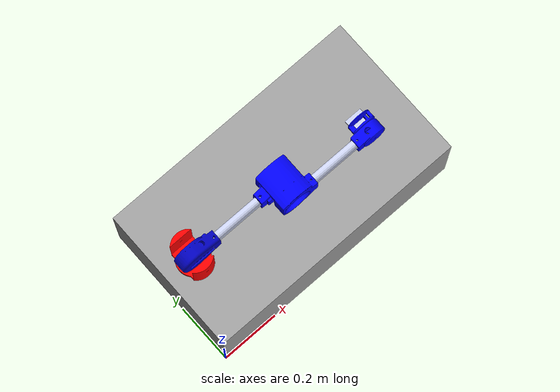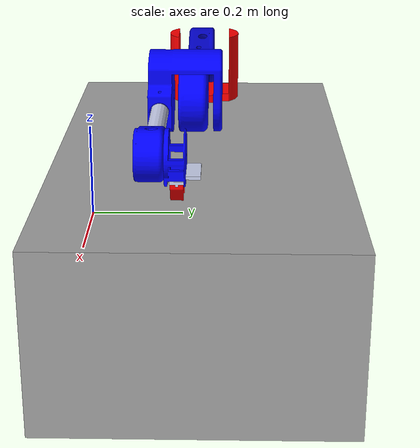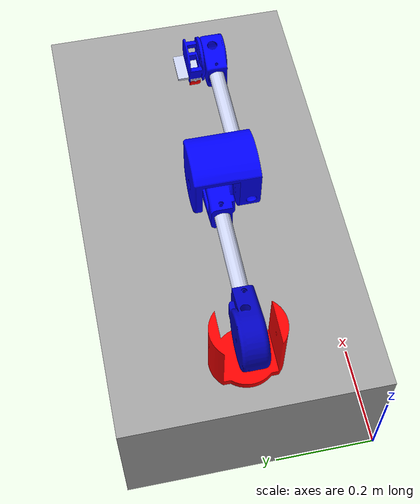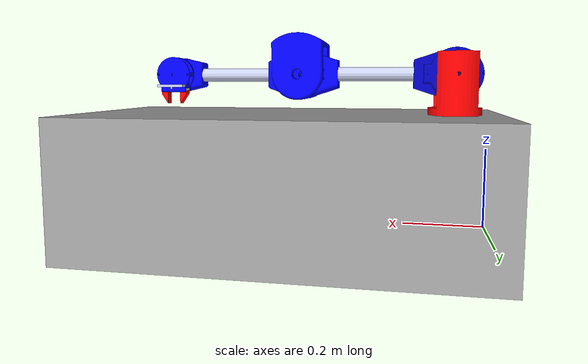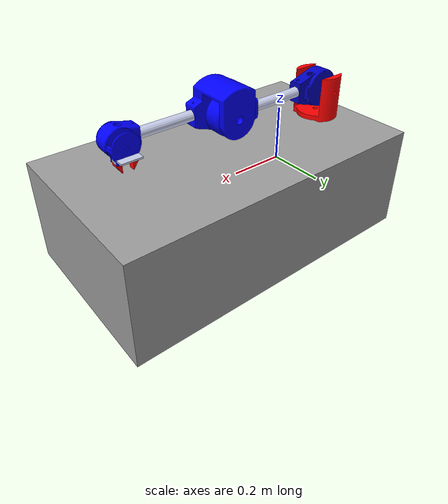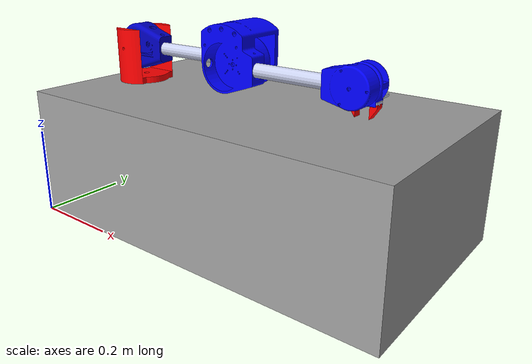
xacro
<?xml version="1.0"?>
<!-- Revolute-Revolute Manipulator -->
<!--
Copied and modified from ROS1 example -
https://github.com/ros-simulation/gazebo_ros_demos/blob/kinetic-devel/rrbot_description/urdf/rrbot.xacro
-->
<robot xmlns:xacro="http://www.ros.org/wiki/xacro" name="2dof_robot">
  <xacro:arg name="prefix" default="" />
  <xacro:arg name="use_gazebo" default="false" />

  <!-- Import RRBot macro -->
  <xacro:include filename="$(find robot_arm_three)/urdf/robot_arm_three.urdf.xacro" />

  <!-- Import RRBot ros2_control description -->
  <xacro:include filename="$(find robot_arm_three)/ros2_control/rrbot.ros2_control.xacro" />

  <!-- Used for fixing robot -->

  <xacro:rrbot_ros2_control
    name="RRBot" prefix="$(arg prefix)" use_gazebo="$(arg use_gazebo)"/>

  <xacro:if value="$(arg use_gazebo)">
    <!-- Import Gazebo Classic definitions + plugin -->
    <xacro:include filename="$(find robot_arm_three)/gazebo/rrbot.gazebo.xacro" />
    <xacro:rrbot_gazebo prefix="$(arg prefix)"/>
  </xacro:if>
</robot>

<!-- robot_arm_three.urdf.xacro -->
<robot xmlns:xacro="http://www.ros.org/wiki/xacro" name="robot_arm_three">
<xacro:arg name="use_gazebo" default="false" />

<link
    name="base_link">
    <inertial>
      <origin
        xyz="0.45153 -0.15 0.25"
        rpy="0 0 0" />
      <mass
        value="500" />
      <inertia
        ixx="3.8205"
        ixy="1.1749E-16"
        ixz="-4.326E-14"
        iyy="11.852"
        iyz="-6.4283E-15"
        izz="10.048" />
    </inertial>
    <visual>
      <origin
        xyz="0 0 0"
        rpy="0 0 0" />
      <geometry>
        <mesh
          filename="file:///home/ros2/Desktop/ros_ws/src/robot_arm_three/meshes/base_link.STL" />
      </geometry>
      <material
        name="">
        <color
          rgba="0.62745 0.62745 0.62745 1" />
      </material>
    </visual>
    <collision>
      <origin
        xyz="0 0 0"
        rpy="0 0 0" />
      <geometry>
        <mesh
          filename="file:///home/ros2/Desktop/ros_ws/src/robot_arm_three/meshes/base_link.STL" />
      </geometry>
    </collision>
  </link>
  <link
    name="Moving_base_Link">
    <inertial>
      <origin
        xyz="-7.4784E-11 2.488E-09 -0.030092"
        rpy="0 0 0" />
      <mass
        value="0.41044" />
      <inertia
        ixx="0.00049787"
        ixy="8.1471E-14"
        ixz="-5.1495E-13"
        iyy="0.00059376"
        iyz="2.0784E-12"
        izz="0.00032503" />
    </inertial>
    <visual>
      <origin
        xyz="0 0 0"
        rpy="0 0 0" />
      <geometry>
        <mesh
          filename="file:///home/ros2/Desktop/ros_ws/src/robot_arm_three/meshes/Moving_base_Link.STL" />
      </geometry>
      <material
        name="">
        <color
          rgba="1 0 0 1" />
      </material>
    </visual>
    <collision>
      <origin
        xyz="0 0 0"
        rpy="0 0 0" />
      <geometry>
        <mesh
          filename="file:///home/ros2/Desktop/ros_ws/src/robot_arm_three/meshes/Moving_base_Link.STL" />
      </geometry>
    </collision>
  </link>
  <joint
    name="base_joint"
    type="fixed">
    <origin
      xyz="0.1 -0.315 0.25"
      rpy="-1.5708 0 0" />
    <parent
      link="base_link" />
    <child
      link="Moving_base_Link" />
    <axis
      xyz="0 0 0" />
  </joint>
  <link
    name="First_axis_link">
    <inertial>
      <origin
        xyz="0.00020443 -0.016953 0.042441"
        rpy="0 0 0" />
      <mass
        value="0.2878" />
      <inertia
        ixx="0.00047468"
        ixy="2.6726E-07"
        ixz="6.9283E-07"
        iyy="0.00028851"
        iyz="2.1973E-05"
        izz="0.0007004" />
    </inertial>
    <visual>
      <origin
        xyz="0 0 0"
        rpy="0 0 0" />
      <geometry>
        <mesh
          filename="file:///home/ros2/Desktop/ros_ws/src/robot_arm_three/meshes/First_axis_link.STL" />
      </geometry>
      <material
        name="">
        <color
          rgba="0 0 0.75294 1" />
      </material>
    </visual>
    <collision>
      <origin
        xyz="0 0 0"
        rpy="0 0 0" />
      <geometry>
        <mesh
          filename="file:///home/ros2/Desktop/ros_ws/src/robot_arm_three/meshes/First_axis_link.STL" />
      </geometry>
    </collision>
  </link>
  <joint
    name="First_axis_joint"
    type="revolute">
    <origin
      xyz="0 0.05 -0.07"
      rpy="1.5708 -1.5709 0" />
    <parent
      link="Moving_base_Link" />
    <child
      link="First_axis_link" />
    <axis
      xyz="0 0 1" />
    <limit
      lower="-3.1415"
      upper="3.1415"
      effort="400"
      velocity="7" />
    <dynamics
      damping="0.05"
      friction="0.1" />
    <safety_controller
      soft_upper_limit="-0.1"
      soft_lower_limit="0.1"
      k_position="50"
      k_velocity="50" />
  </joint>
  <link
    name="First_Mil_link">
    <inertial>
      <origin
        xyz="0 6.9389E-18 0.1"
        rpy="0 0 0" />
      <mass
        value="0.14137" />
      <inertia
        ixx="0.00047919"
        ixy="6.365E-22"
        ixz="-3.3602E-20"
        iyy="0.00047919"
        iyz="4.9964E-21"
        izz="1.5904E-05" />
    </inertial>
    <visual>
      <origin
        xyz="0 0 0"
        rpy="0 0 0" />
      <geometry>
        <mesh
          filename="file:///home/ros2/Desktop/ros_ws/src/robot_arm_three/meshes/First_Mil_link.STL" />
      </geometry>
      <material
        name="">
        <color
          rgba="0.79216 0.81961 0.93333 1" />
      </material>
    </visual>
    <collision>
      <origin
        xyz="0 0 0"
        rpy="0 0 0" />
      <geometry>
        <mesh
          filename="file:///home/ros2/Desktop/ros_ws/src/robot_arm_three/meshes/First_Mil_link.STL" />
      </geometry>
    </collision>
  </link>
  <joint
    name="First_Mil_joint"
    type="fixed">
    <origin
      xyz="-0.00020649 -0.065626 0.041309"
      rpy="1.5709 0 -0.00032045" />
    <parent
      link="First_axis_link" />
    <child
      link="First_Mil_link" />
    <axis
      xyz="0 0 0" />
  </joint>
  <link
    name="Second_fixing_axis_link">
    <inertial>
      <origin
        xyz="0.00045772 -0.0011495 0.048671"
        rpy="0 0 0" />
      <mass
        value="0.2878" />
      <inertia
        ixx="0.00047467"
        ixy="3.0307E-07"
        ixz="7.1506E-08"
        iyy="0.0007004"
        iyz="-2.1995E-05"
        izz="0.00028851" />
    </inertial>
    <visual>
      <origin
        xyz="0 0 0"
        rpy="0 0 0" />
      <geometry>
        <mesh
          filename="file:///home/ros2/Desktop/ros_ws/src/robot_arm_three/meshes/Second_fixing_axis_link.STL" />
      </geometry>
      <material
        name="">
        <color
          rgba="0.0 0.0 1.0 1" />
      </material>
    </visual>
    <collision>
      <origin
        xyz="0 0 0"
        rpy="0 0 0" />
      <geometry>
        <mesh
          filename="file:///home/ros2/Desktop/ros_ws/src/robot_arm_three/meshes/Second_fixing_axis_link.STL" />
      </geometry>
    </collision>
  </link>
  <joint
    name="First_mil_second_fixing_axis_joint"
    type="fixed">
    <origin
      xyz="0 0 0.2"
      rpy="0 0 0" />
    <parent
      link="First_Mil_link" />
    <child
      link="Second_fixing_axis_link" />
    <axis
      xyz="0 0 0" />
  </joint>
  <link
    name="Second_axis_link">
    <inertial>
      <origin
        xyz="0.0058045 -0.034292 0.02648"
        rpy="0 0 0" />
      <mass
        value="0.63376" />
      <inertia
        ixx="0.0012314"
        ixy="-0.00012396"
        ixz="1.0726E-05"
        iyy="0.0010088"
        iyz="-0.0001858"
        izz="0.0017832" />
    </inertial>
    <visual>
      <origin
        xyz="0 0 0"
        rpy="0 0 0" />
      <geometry>
        <mesh
          filename="file:///home/ros2/Desktop/ros_ws/src/robot_arm_three/meshes/Second_axis_link.STL" />
      </geometry>
      <material
        name="">
        <color
          rgba="0.0 0.0 1.0 1" />
      </material>
    </visual>
    <collision>
      <origin
        xyz="0 0 0"
        rpy="0 0 0" />
      <geometry>
        <mesh
          filename="file:///home/ros2/Desktop/ros_ws/src/robot_arm_three/meshes/Second_axis_link.STL" />
      </geometry>
    </collision>
  </link>
  <joint
    name="Second_axis_joint"
    type="revolute">
    <origin
      xyz="0.0004575 -0.043784 0.065618"
      rpy="-1.5708 -1.5709 0" />
    <parent
      link="Second_fixing_axis_link" />
    <child
      link="Second_axis_link" />
    <axis
      xyz="0 0 1" />
    <limit
      lower="-3.1415"
      upper="3.1415"
      effort="400"
      velocity="7" />
    <dynamics
      damping="0.05"
      friction="0.1" />
    <safety_controller
      soft_upper_limit="-0.1"
      soft_lower_limit="0.1"
      k_position="50"
      k_velocity="50" />
  </joint>
  <link
    name="Second_mil_link">
    <inertial>
      <origin
        xyz="-0.0083972 0.0054255 0.11033"
        rpy="0 0 0" />
      <mass
        value="0.14137" />
      <inertia
        ixx="0.00047919"
        ixy="1.2794E-21"
        ixz="7.0399E-20"
        iyy="0.00047919"
        iyz="-2.9758E-20"
        izz="1.5904E-05" />
    </inertial>
    <visual>
      <origin
        xyz="0 0 0"
        rpy="0 0 0" />
      <geometry>
        <mesh
          filename="file:///home/ros2/Desktop/ros_ws/src/robot_arm_three/meshes/Second_mil_link.STL" />
      </geometry>
      <material
        name="">
        <color
          rgba="0.79216 0.81961 0.93333 1" />
      </material>
    </visual>
    <collision>
      <origin
        xyz="0 0 0"
        rpy="0 0 0" />
      <geometry>
        <mesh
          filename="file:///home/ros2/Desktop/ros_ws/src/robot_arm_three/meshes/Second_mil_link.STL" />
      </geometry>
    </collision>
  </link>
  <joint
    name="Second_mil_joint"
    type="fixed">
    <origin
      xyz="0.049694 0.0055217 -0.0066038"
      rpy="1.5708 -1.5707 1.5708" />
    <parent
      link="Second_axis_link" />
    <child
      link="Second_mil_link" />
    <axis
      xyz="0 0 0" />
  </joint>
  <link
    name="Third_fixing_axis_link">
    <inertial>
      <origin
        xyz="-0.00047757 6.3774E-05 0.02611"
        rpy="0 0 0" />
      <mass
        value="0.13374" />
      <inertia
        ixx="0.00017544"
        ixy="4.9987E-10"
        ixz="-7.574E-06"
        iyy="0.00012399"
        iyz="4.6365E-09"
        izz="8.8845E-05" />
    </inertial>
    <visual>
      <origin
        xyz="0 0 0"
        rpy="0 0 0" />
      <geometry>
        <mesh
          filename="file:///home/ros2/Desktop/ros_ws/src/robot_arm_three/meshes/Third_fixing_axis_link.STL" />
      </geometry>
      <material
        name="">
        <color
          rgba="0.0 0.0 1.0 1" />
      </material>
    </visual>
    <collision>
      <origin
        xyz="0 0 0"
        rpy="0 0 0" />
      <geometry>
        <mesh
          filename="file:///home/ros2/Desktop/ros_ws/src/robot_arm_three/meshes/Third_fixing_axis_link.STL" />
      </geometry>
    </collision>
  </link>
  <joint
    name="second_mil_third_fixing_axis_joint"
    type="fixed">
    <origin
      xyz="-0.0083972 0.0054255 0.21033"
      rpy="0 0 0" />
    <parent
      link="Second_mil_link" />
    <child
      link="Third_fixing_axis_link" />
    <axis
      xyz="0 0 0" />
  </joint>
  <link
    name="Third_axis_link">
    <inertial>
      <origin
        xyz="1.2302E-06 0.0046698 0.013516"
        rpy="0 0 0" />
      <mass
        value="0.053567" />
      <inertia
        ixx="2.4098E-05"
        ixy="-1.5016E-09"
        ixz="-3.5463E-08"
        iyy="2.8157E-05"
        iyz="-1.2699E-06"
        izz="4.8213E-05" />
    </inertial>
    <visual>
      <origin
        xyz="0 0 0"
        rpy="0 0 0" />
      <geometry>
        <mesh
          filename="file:///home/ros2/Desktop/ros_ws/src/robot_arm_three/meshes/Third_axis_link.STL" />
      </geometry>
      <material
        name="">
        <color
          rgba="0.0 0.0 1.0 1" />
      </material>
    </visual>
    <collision>
      <origin
        xyz="0 0 0"
        rpy="0 0 0" />
      <geometry>
        <mesh
          filename="file:///home/ros2/Desktop/ros_ws/src/robot_arm_three/meshes/Third_axis_link.STL" />
      </geometry>
    </collision>
  </link>
  <joint
    name="Third_axis_joint"
    type="revolute">
    <origin
      xyz="0.02 0.00062296 0.04"
      rpy="3.14 -1.5708 0" />
    <parent
      link="Third_fixing_axis_link" />
    <child
      link="Third_axis_link" />
    <axis
      xyz="0 0 -1" />
    <limit
      lower="-3.14"
      upper="3.14"
      effort="200"
      velocity="7" />
    <dynamics
      damping="0.05"
      friction="0.05" />
    <safety_controller
      soft_upper_limit="-0.1"
      soft_lower_limit="0.1"
      k_position="50"
      k_velocity="50" />
  </joint>
<link
    name="camera_link">
    <inertial>
      <origin
        xyz="0.00742671528155842 0 0"
        rpy="0 0 0" />
      <mass
        value="0.00669817477042468" />
      <inertia
        ixx="2.24650679615758E-06"
        ixy="-2.85635805272217E-23"
        ixz="-3.36613657076379E-22"
        iyy="1.99652632455908E-06"
        iyz="3.23338469113802E-17"
        izz="2.8272632455908E-07" />
    </inertial>
    <visual>
      <origin
        xyz="0 0 0"
        rpy="0 0 0" />
      <geometry>
        <mesh
          filename="file:///home/ros2/Desktop/ros_ws/src/robot_arm_three/meshes/camera_link.STL" />
      </geometry>
      <material
        name="">
        <color
          rgba="0.792156862745098 0.819607843137255 0.933333333333333 1" />
      </material>
    </visual>
    <collision>
      <origin
        xyz="0 0 0"
        rpy="0 0 0" />
      <geometry>
        <mesh
          filename="file:///home/ros2/Desktop/ros_ws/src/robot_arm_three/meshes/camera_link.STL" />
      </geometry>
    </collision>
  </link>
  <joint
    name="camera_joint"
    type="fixed">
    <origin
      xyz="0 0.0331562787109546 0.0434999999999439"
      rpy="1.57079632677603 0 -1.5707963267949" />
    <parent
      link="Third_axis_link" />
    <child
      link="camera_link" />
    <axis
      xyz="0 0 0" />
  </joint>

<link name="base_lift_link"/>
<joint name="base_lift_joint" type="fixed">
    <parent link="base_lift_link"/>
    <child link="base_link"/>
    <origin xyz="0 0 0" rpy="-1.57 0 0"/>
  </joint>
<!-- ///////////////////////// gazebo  parameters////////////////////////////-->

    <gazebo reference="camera_link">
        <sensor name="camera" type="camera">
         <pose>0 0 0 0 0 -3.14</pose> <!-- roll pitch yaw -->
            <always_on>true</always_on>
            <update_rate>60</update_rate>        <!-- FPS -->
            <visualize>true</visualize>
            <camera>
            <horizontal_fov>1.047</horizontal_fov> <!-- 60 derece -->
            <image>
                <width>640</width>
                <height>480</height>
                <format>R8G8B8</format>
            </image>
            <clip>
                <near>0.1</near>
                <far>100</far>
            </clip>
            </camera>
            <plugin filename="gz-sim-sensors-system"
            name="gz::sim::systems::Sensors"/>

            <topic>camera/image</topic> <!-- Gazebo topic -->
        </sensor>
    </gazebo>

<link
    name="gripper_base_link">
    <inertial>
      <origin
        xyz="-1.38777878078145E-17 0.00507773909729814 -3.00330654887104E-07"
        rpy="0 0 0" />
      <mass
        value="0.00737896174553321" />
      <inertia
        ixx="2.93127171204422E-07"
        ixy="-1.35475293940183E-21"
        ixz="7.18304419805119E-22"
        iyy="2.46379796999463E-06"
        iyz="-1.43231223323957E-11"
        izz="2.22163461829653E-06" />
    </inertial>
    <visual>
      <origin
        xyz="0 0 0"
        rpy="0 0 0" />
      <geometry>
        <mesh
          filename="file:///home/ros2/Desktop/ros_ws/src/robot_arm_three/meshes/gripper_base_link.STL" />
      </geometry>
      <material
        name="">
        <color
          rgba="0.792156862745098 0.819607843137255 0.933333333333333 1" />
      </material>
    </visual>
    <collision>
      <origin
        xyz="0 0 0"
        rpy="0 0 0" />
      <geometry>
        <mesh
          filename="file:///home/ros2/Desktop/ros_ws/src/robot_arm_three/meshes/gripper_base_link.STL" />
      </geometry>
    </collision>
  </link>
  <joint
    name="gripper_base_joint"
    type="fixed">
    <origin
      xyz="0 0.0395 0.019"
      rpy="5.9147E-05 0 3.1416" />
    <parent
      link="Third_axis_link" />
    <child
      link="gripper_base_link" />
    <axis
      xyz="0 0 0" />
  </joint>

  <link
    name="right_gripper_hand_link">
    <inertial>
      <origin
        xyz="-0.020998 -0.0078593 4.6485E-07"
        rpy="0 0 0" />
      <mass
        value="0.0055154" />
      <inertia
        ixx="4.5417E-07"
        ixy="6.7061E-08"
        ixz="-3.9665E-12"
        iyy="2.8042E-07"
        iyz="4.4337E-12"
        izz="3.5538E-07" />
    </inertial>
    <visual>
      <origin
        xyz="0 0 0"
        rpy="0 0 0" />
      <geometry>
        <mesh
          filename="file:///home/ros2/Desktop/ros_ws/src/robot_arm_three/meshes/right_gripper_hand_link.STL" />
      </geometry>
      <material
        name="">
        <color
          rgba="1 0 0 1" />
      </material>
    </visual>
    <collision>
      <origin
        xyz="0 0 0"
        rpy="0 0 0" />
      <geometry>
        <mesh
          filename="file:///home/ros2/Desktop/ros_ws/src/robot_arm_three/meshes/right_gripper_hand_link.STL" />
      </geometry>
    </collision>
  </link>
  <joint
    name="right_gripper_hand_joint"
    type="prismatic">
    <origin
      xyz="0 0 0"
      rpy="0 0 0" />
    <parent
      link="gripper_base_link" />
    <child
      link="right_gripper_hand_link" />
    <axis
      xyz="1 0 0" />
    <limit
      lower="-0.035"
      upper="0.035"
      effort="200"
      velocity="2" />
    <safety_controller
      soft_upper_limit="-0.005"
      soft_lower_limit="0.005"
      k_position="50"
      k_velocity="50" />
  </joint>
  <link
    name="left_gripper_hand_link">
    <inertial>
      <origin
        xyz="0.020998 -0.0078593 4.6485E-07"
        rpy="0 0 0" />
      <mass
        value="0.0055154" />
      <inertia
        ixx="4.5417E-07"
        ixy="-6.7061E-08"
        ixz="3.9665E-12"
        iyy="2.8042E-07"
        iyz="4.4337E-12"
        izz="3.5538E-07" />
    </inertial>
    <visual>
      <origin
        xyz="0 0 0"
        rpy="0 0 0" />
      <geometry>
        <mesh
          filename="file:///home/ros2/Desktop/ros_ws/src/robot_arm_three/meshes/left_gripper_hand_link.STL" />
      </geometry>
      <material
        name="">
        <color
          rgba="1 0 0 1" />
      </material>
    </visual>
    <collision>
      <origin
        xyz="0 0 0"
        rpy="0 0 0" />
      <geometry>
        <mesh
          filename="file:///home/ros2/Desktop/ros_ws/src/robot_arm_three/meshes/left_gripper_hand_link.STL" />
      </geometry>
    </collision>
  </link>
  <joint
    name="left_gripper_hand_joint"
    type="prismatic">
    <origin
      xyz="0 0 0"
      rpy="0 0 0" />
    <parent
      link="gripper_base_link" />
    <child
      link="left_gripper_hand_link" />
    <axis
      xyz="1 0 0" />
    <limit
      lower="-0.035"
      upper="0.035"
      effort="200"
      velocity="2" />
    <safety_controller
      soft_upper_limit="-0.005"
      soft_lower_limit="0.005"
      k_position="50"
      k_velocity="50" />
  </joint>

</robot>
